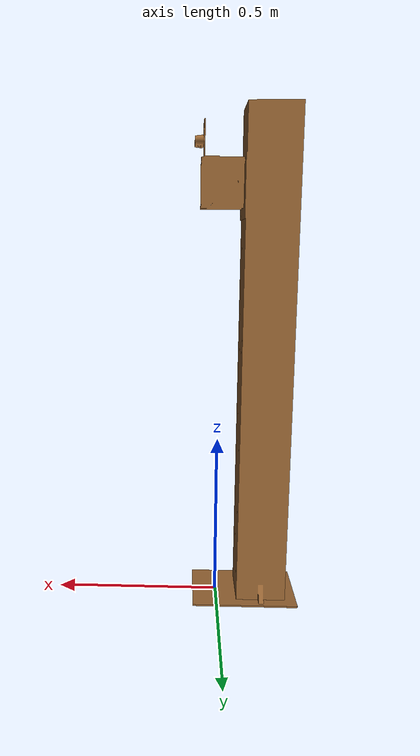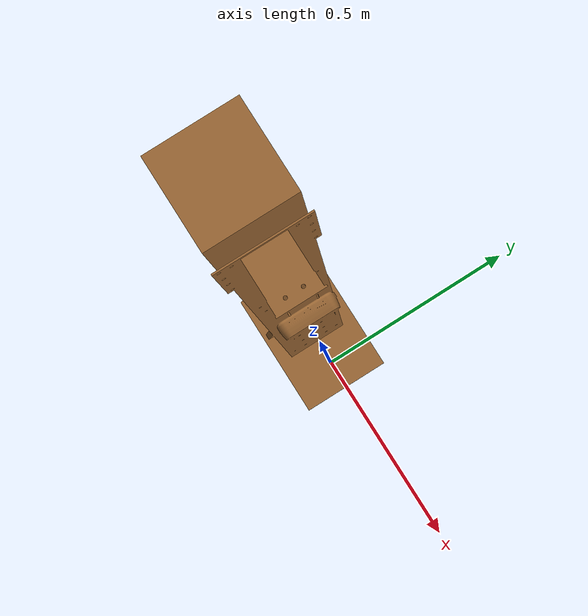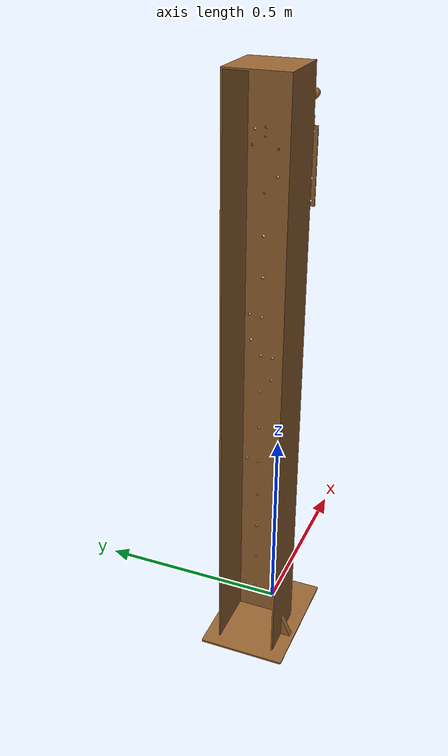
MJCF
<?xml version="1.0" encoding="UTF-8"?>
<mujoco>
    <asset>
        <mesh file="v6.STL" name="v6_mesh" scale="0.001 0.001 0.001"/>
    </asset>

    <worldbody>
        <body name="v6_main_body" pos="0 0 0">
            <geom type="mesh" mesh="v6_mesh" rgba="0.6 0.4 0.2 1"/>
        </body>
    </worldbody>
</mujoco>
